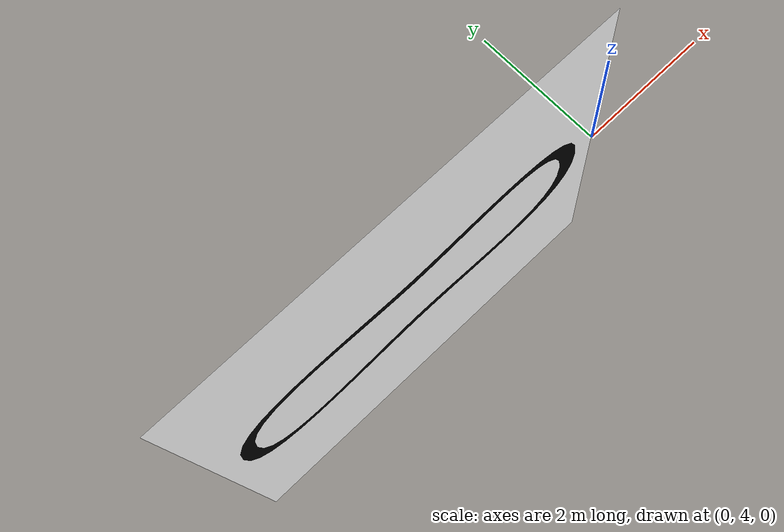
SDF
<?xml version ="1.0"?>
<sdf version="1.6">
  <model name="black_line">
    <pose>-3.14159265359 4 0  1.57079632679 0 0</pose>
    <static>true</static>
    <link name="link">
      <collision name="colision1">
        <geometry>
          <mesh>
            <uri>model://black_line/meshes/black_line.dae</uri>
          </mesh>
        </geometry>
      </collision>

      <visual name="visual1">
        <cast_shadows>true</cast_shadows>
        <geometry>
          <mesh>
            <uri>model://black_line/meshes/black_line.dae</uri>
          </mesh>
        </geometry>
      </visual>

    </link>
  </model>
</sdf>
